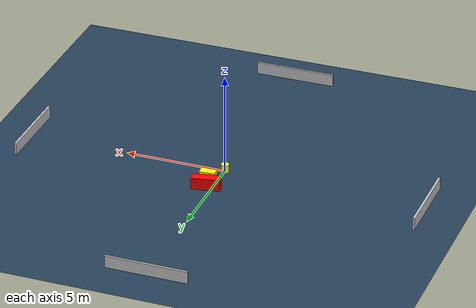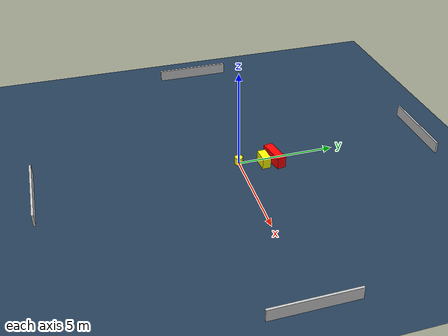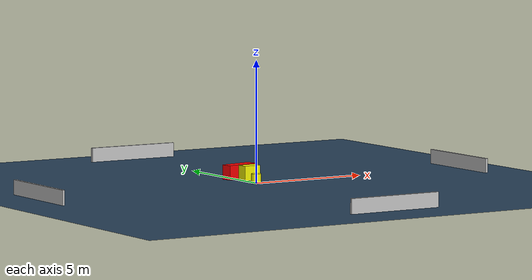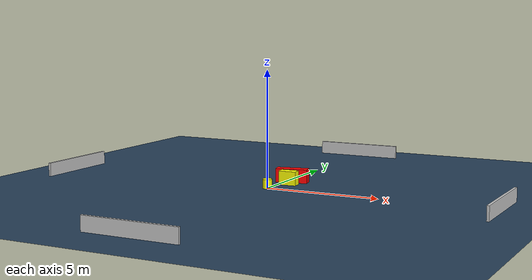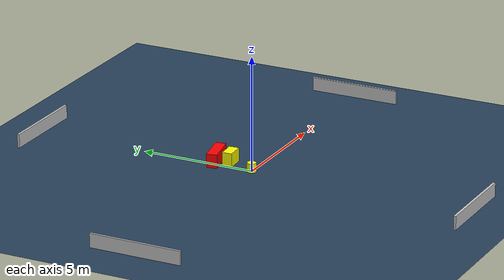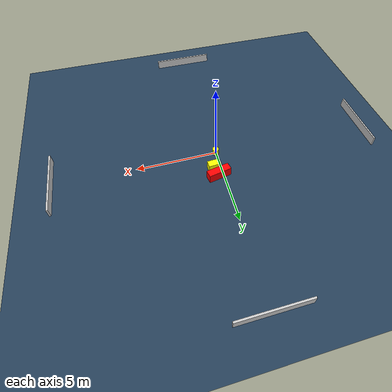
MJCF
<?xml version="1.0" ?>
<mujoco model="generated_environment">
  <option timestep="0.01" integrator="RK4" cone="elliptic"/>
  <default>
    <geom density="1"/>
  </default>
  <asset>
    <texture builtin="gradient" height="3072" name="skybox" rgb1="0.3 0.5 0.7" rgb2="0 0 0" type="skybox" width="512"/>
    <texture builtin="checker" height="300" name="groundplane" rgb1="0.2 0.3 0.4" rgb2="0.1 0.2 0.3" type="2d" width="300"/>
    <material name="groundplane" reflectance="0.2" texrepeat="5 5" texture="groundplane"/>
  </asset>
  <worldbody>
    <light dir="0 0 -1" directional="true" pos="0 0 1.5"/>
    <geom condim="3" friction="0.5 0.005 0.001" material="groundplane" name="floor" pos="0 0 0" size="0 0 0.05" type="plane"/>
    <body name="walls">
      <geom name="wall_1" condim="4" pos="-10.0 0.0 0.3" rgba="0.800000011920929 0.800000011920929 0.800000011920929 1.0" size="0.05 2.0 0.3" type="box"/>
      <geom name="wall_2" condim="4" pos="10.0 0.0 0.3" rgba="0.800000011920929 0.800000011920929 0.800000011920929 1.0" size="0.05 2.0 0.3" type="box"/>
      <geom name="wall_3" condim="4" pos="0.0 -10.0 0.3" rgba="0.800000011920929 0.800000011920929 0.800000011920929 1.0" size="2.0 0.05 0.3" type="box"/>
      <geom name="wall_4" condim="4" pos="0.0 10.0 0.3" rgba="0.800000011920929 0.800000011920929 0.800000011920929 1.0" size="2.0 0.05 0.3" type="box"/>
    </body>
    <body name="robot">
      <joint name="joint_x" type="slide" pos="0 0 0" axis="1 0 0"/>
      <joint name="joint_y" type="slide" pos="0 0 0" axis="0 1 0"/>
      <geom name="robot" type="cylinder" pos="0.0 0.0 0.2" size="0.2 0.2 0.0" mass="5.0" friction="1.0 0.005 0.0001" condim="4" rgba="1.0 1.0 0.0 1.0"/>
    </body>
    <body name="obstacle_1_movable">
      <geom name="obstacle_1_movable" condim="4" pos="0.41505410032514245 1.1912173259453447 0.3" euler="0 0 183.90790860103084" friction="0.0 0.005 0.001" rgba="1.0 1.0 0.0 1.0" size="0.38170951904184525 0.21485563746669317 0.3" type="box" mass="0.1"/>
      <joint type="free"/>
    </body>
    <body name="obstacle_2_static">
      <geom name="obstacle_2_static" condim="4" pos="0.29015967664726333 1.7965694644846626 0.3" euler="0 0 191.34051657417683" friction="0.0 0.005 0.001" rgba="1.0 0.0 0.0 1.0" size="0.7013612736785415 0.22794270769499508 0.3" type="box"/>
    </body>
  </worldbody>
  <actuator>
    <motor name="actuator_x" joint="joint_x" gear="1" ctrlrange="-1 1"/>
    <motor name="actuator_y" joint="joint_y" gear="1" ctrlrange="-1 1"/>
  </actuator>
</mujoco>
